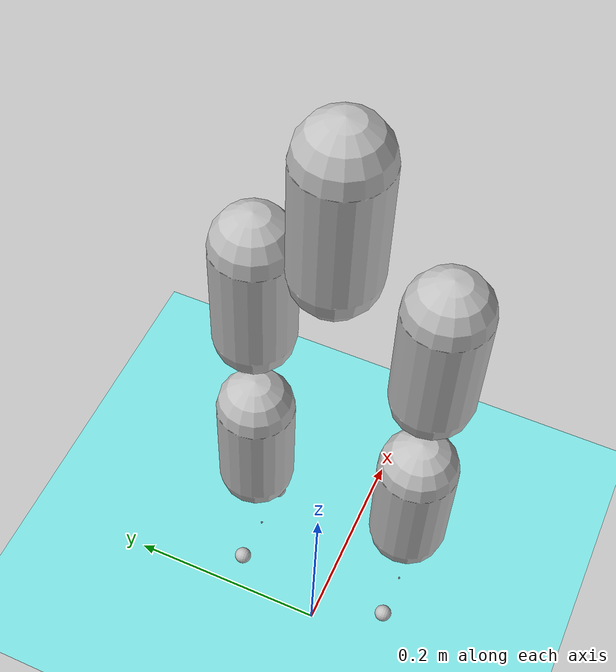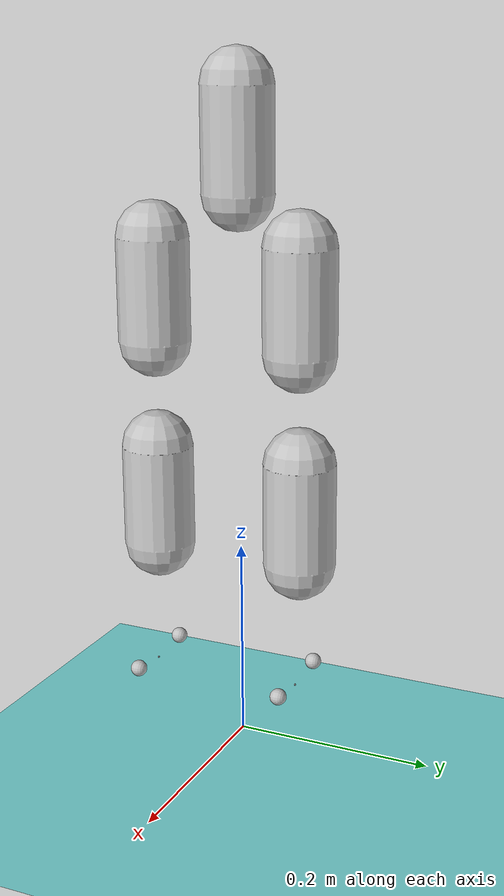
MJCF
<mujoco model="bruce scene">

  <include file="bruce_description.xml"/>

  <visual>
    <headlight diffuse="0.6 0.6 0.6"  ambient="0.3 0.3 0.3" specular="0 0 0"/>
    <rgba haze="0.15 0.25 0.35 1"/>
    <global azimuth="120" elevation="-20"/>
  </visual>

  <asset>
    <texture type="skybox" builtin="gradient" rgb1="0.3 0.5 0.7" rgb2="0 0 0" width="512"
        height="3072"/>
    <texture type="2d" name="groundplane" builtin="checker" mark="edge" rgb1="0.2 0.3 0.4"
        rgb2="0.1 0.2 0.3" markrgb="0.8 0.8 0.8" width="300" height="300"/>
    <material name="groundplane" texture="groundplane" texuniform="true" texrepeat="1 1"
        reflectance="0.2"/>
  </asset>

  <worldbody>
    <light pos="0 0 1.5" dir="0 0 -1" directional="true"/>
  </worldbody>

  <keyframe>
    <key name="home"
      qpos="
    0 0 0.49
    1 0 0 0
    0 0.39 0 -0.64 0.3
    0 0.39 0 -0.64 0.3
    "/>
  </keyframe>
</mujoco>

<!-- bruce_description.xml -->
<mujoco model="bruce_description">
    <compiler angle="radian" meshdir="../meshes/" />
  <option iterations="2" ls_iterations="5" gravity="0.0 0.0 -9.81">
    <flag eulerdamp="disable" />
  </option>

  <compiler angle="radian" meshdir="assets" autolimits="true"/>

    <default>
        <geom contype="0" conaffinity="1" condim="3" rgba="0.5 0.6 0.7 1" group="0" />
        <joint damping="0.1" armature="0.01" frictionloss="0.0" />
        <motor ctrllimited="true" ctrlrange="-10.0 10.0" />
        <default class="collision">
          <geom condim="3" group="0" />
        </default>
    <default class="visual">
      <geom group="1" conaffinity="0" contype="0" />
    </default>
    </default>

    <asset>
        <texture type="skybox" builtin="gradient" rgb1="1.0 1.0 1.0" rgb2="1.0 1.0 1.0" width="512" height="512"/>
        <texture name="plane" type="2d" builtin="flat" rgb1="1 1 1" rgb2="1 1 1" width="512" height="512" mark="cross" markrgb="0 0 0"/>
        <material name="plane" reflectance="0.0" texture="plane" texrepeat="3 3" texuniform="true"/>
    </asset>

    <worldbody>
        <geom name='floor' type='plane' contype='1' conaffinity='0' rgba="0.5 0.9 0.9 0.1" material='plane' pos='0 0 0' size='0 0 1'/>

        <body name="bruce-pelvis" pos="0 0 0.55">
            <inertial pos="0.02259605 -0.00011305 0.06140054" mass="1.31688922" fullinertia="0.01335430 0.01023631 0.00547100 -0.00000336 0.00182725 -0.00001163"/>
            <geom class="collision" type="capsule" rgba="0.75294 0.75294 0.75294 1" size="0.035 0.10" fromto="0 0 0 0 0 0.10"/>
            <joint armature="0" damping="0" limited="false" margin="0.01" name="root" pos="0 0 0" type="free"/>

            <!-- Right leg -->
            <body name="hip_yaw_r" pos="0.029216 -0.075856 -0.039765" quat="0.707105 0 0 0.707108">
                <inertial pos="2.71e-06 -0.00024824 0.00522427" quat="0.517691 0.482114 0.518083 0.480784" mass="0.637563" diaginertia="0.0016174 0.00152078 0.000485406"/>
                <joint name="joint_hip_yaw_r" pos="0 0 0" type="hinge" axis="0 0 1" range="-0.785 0.785" damping="0.1"/>
                <body name="hip_pitch_r" quat="0.499998 0.5 0.5 -0.500002">
                <inertial pos="-1.51e-07 0 6.88e-06" quat="0.5 0.5 -0.5 0.5" mass="0.00385748" diaginertia="2.24e-07 2.12e-07 1.41e-07"/>
                    <joint name="joint_hip_pitch_r" pos="0 0 0" type="hinge" axis="0 -1 0" range="-0.4 2.5" damping="0.1"/>
                    <geom class="collision" type="capsule" rgba="0.75294 0.75294 0.75294 1" size="0.035 0.10" fromto="0 0 0 0.10 0 0"/>
                    <body name="hip_roll_r" quat="0.707105 0.707108 0 0">
                      <inertial pos="0.140714 -0.0086817 0.00167429" quat="-0.0210718 0.710934 0.00543456 0.702922" mass="0.72849" diaginertia="0.0181996 0.0179488 0.000479326"/>
                      <joint name="joint_hip_roll_r" pos="0 0 0" axis="0 1 0" range="-0.7854 0.36"/>

                      <body name="knee_pitch_r" pos="0.20495 0 0">
                        <inertial pos="0.0729308 0.0174645 0.00216432" quat="-0.0124752 0.71085 -0.0538621 0.701167" mass="0.0956654" diaginertia="0.00108397 0.00102192 0.000106307"/>
                        <joint name="joint_knee_pitch_r" pos="0 0 0" axis="0 0 1" range="-2.5 0.25"/>

                        <geom class="collision" type="capsule" rgba="0.75294 0.75294 0.75294 1" size="0.035 0.1" fromto="0 0 0 0.1 0 0"/>
                        <body name="ankle_pitch_r" pos="0.19988 0 0">
                          <inertial pos="0.0120775 0.0019746 0.00029511" quat="0.443128 0.545146 -0.456612 0.545855" mass="0.0276265" diaginertia="2.58838e-05 2.09859e-05 5.64035e-06"/>
                          <joint name="joint_ankle_pitch_r" pos="0 0 0" axis="0 0 1" range="-0.5 0.5"/>

                        <geom name="toe_right_collision" type="sphere" pos="0.0185 0.05 0" size="0.008" rgba="0.75294 0.75294 0.75294 1">
                        </geom>
                        <geom name="heel_right_collision" type="sphere" pos="0.0185 -0.035 0" size="0.008" rgba="0.75294 0.75294 0.75294 1">
                        </geom>
                        <site name="rf_sole" size=".001" pos="0.024 0.01 0" quat="0.5 -0.5 -0.5 0.5"/>
                        </body>
                      </body>
                    </body>
                </body>
            </body>

            <!-- Left leg -->
            <body name="hip_yaw_l" pos="0.029216 0.075856 -0.039765" quat="0.707105 0 0 0.707108">
                <inertial pos="0 -0.00020849 0.00528032" quat="0.518836 0.480432 0.518756 0.480506" mass="0.637386" diaginertia="0.00161868 0.00152047 0.0004852"/>
                <joint name="joint_hip_yaw_l" pos="0 0 0" type="hinge" axis="0 0 1" range="-0.7854 0.7854"/>

                <body name="hip_pitch_l" quat="0.499998 0.5 0.5 -0.500002">
                    <inertial pos="-1.51e-07 0 6.88e-06" quat="0.5 0.5 -0.5 0.5" mass="0.00385748" diaginertia="2.24e-07 2.12e-07 1.41e-07"/>
                    <joint name="joint_hip_pitch_l" pos="0 0 0" type="hinge" axis="0 -1 0" range="-0.4 2.5"/>
                    <geom class="collision" type="capsule" rgba="0.75294 0.75294 0.75294 1" size="0.035 0.1" fromto="0 0 0 0.1 0 0"/>
                    <body name="hip_roll_l" quat="0.707105 0.707108 0 0">
                      <inertial pos="0.142447 -0.00832054 -0.00174716" quat="-0.002203 0.702817 0.024599 0.710942" mass="0.720628" diaginertia="0.018195 0.0179541 0.000461885"/>
                      <joint name="joint_hip_roll_l" pos="0 0 0" axis="0 1 0" range="-0.36 0.7854"/>

                      <body name="knee_pitch_l" pos="0.20495 0 0">
                        <inertial pos="0.0730996 0.0178102 -0.00219767" quat="0.0505999 0.70058 0.00930476 0.711716" mass="0.0952654" diaginertia="0.00107995 0.00101966 0.000104635"/>
                        <joint name="joint_knee_pitch_l" pos="0 0 0" axis="0 0 1" range="-2.5 0.25"/>

                        <geom class="collision" type="capsule" rgba="0.75294 0.75294 0.75294 1" size="0.035 0.1" fromto="0 0 0 0.1 0 0"/>
                        <body name="ankle_pitch_l" pos="0.19988 0 0">
                          <inertial pos="0.0123398 0.00253004 -0.00030441" quat="0.455603 0.546571 -0.442281 0.545962" mass="0.0274829" diaginertia="2.60237e-05 2.09939e-05 5.69233e-06"/>
                          <joint name="joint_ankle_pitch_l" pos="0 0 0" axis="0 0 1" range="-0.5 0.5"/>

                        <geom name="toe_left_collision" type="sphere" pos="0.0185 0.05 0" size="0.008" rgba="0.75294 0.75294 0.75294 1">
                        </geom>
                        <geom name="heel_left_collision" type="sphere" pos="0.0185 -0.035 0" size="0.008" rgba="0.75294 0.75294 0.75294 1">
                        </geom>
                        <site name="lf_sole" size=".001" pos="0.024 0.01 0" quat="0.5 -0.5 -0.5 0.5"/>

                        </body>
                      </body>
                    </body>
                </body>
            </body>
        </body>
    </worldbody>
  <!-- !!! ignore hip parts self-collision to make the model stable in mujoco -->
  <contact>
    <exclude body1="hip_pitch_r" body2="hip_yaw_r"/>
    <exclude body1="hip_pitch_l" body2="hip_yaw_l"/>
    <exclude body1="hip_pitch_r" body2="hip_roll_r"/>
    <exclude body1="hip_pitch_l" body2="hip_roll_l"/>
    <exclude body1="hip_yaw_r" body2="hip_roll_r"/>
    <exclude body1="hip_yaw_l" body2="hip_roll_l"/>
  </contact>

    <actuator>
      <motor name="joint_hip_yaw_r_motor" joint="joint_hip_yaw_r" gear="1"/>
      <motor name="joint_hip_pitch_r_motor" joint="joint_hip_pitch_r" gear="1"/>
      <motor name="joint_hip_roll_r_motor" joint="joint_hip_roll_r" gear="1"/>
      <motor name="joint_knee_pitch_r_motor" joint="joint_knee_pitch_r" gear="1"/>
      <motor name="joint_ankle_pitch_r_motor" joint="joint_ankle_pitch_r" gear="1"/>
      <motor name="joint_hip_yaw_l_motor" joint="joint_hip_yaw_l" gear="1"/>
      <motor name="joint_hip_pitch_l_motor" joint="joint_hip_pitch_l" gear="1"/>
      <motor name="joint_hip_roll_l_motor" joint="joint_hip_roll_l" gear="1"/>
      <motor name="joint_knee_pitch_l_motor" joint="joint_knee_pitch_l" gear="1"/>
      <motor name="joint_ankle_pitch_l_motor" joint="joint_ankle_pitch_l" gear="1"/>
    </actuator>
</mujoco>
